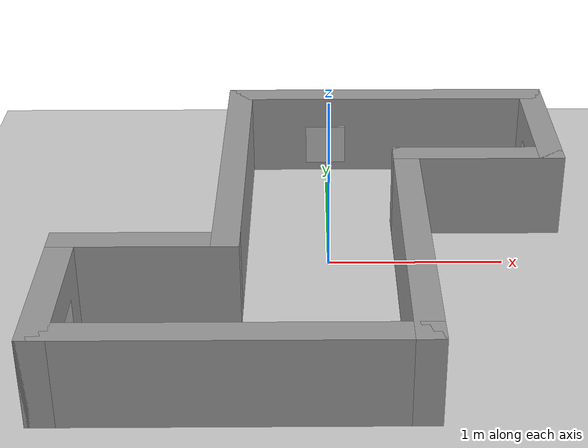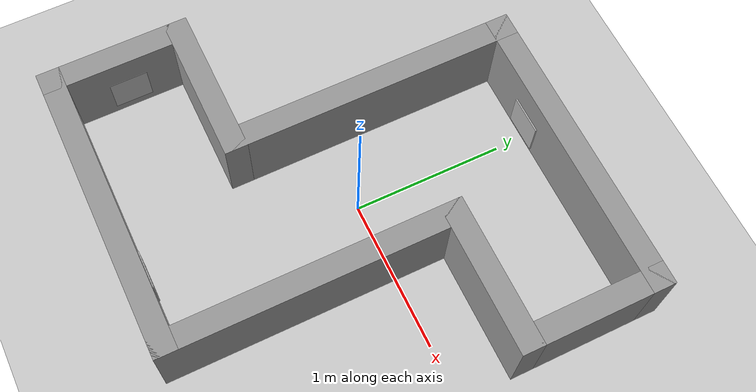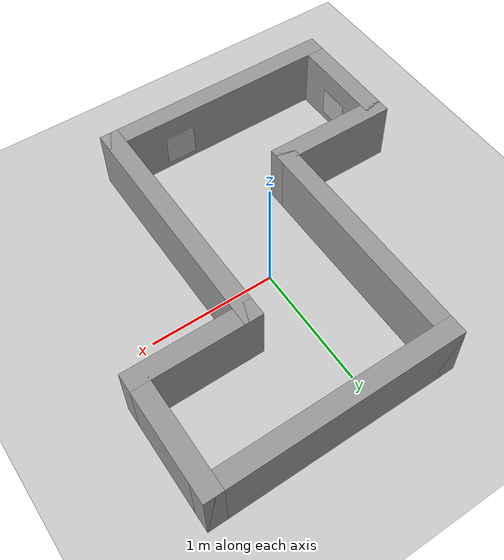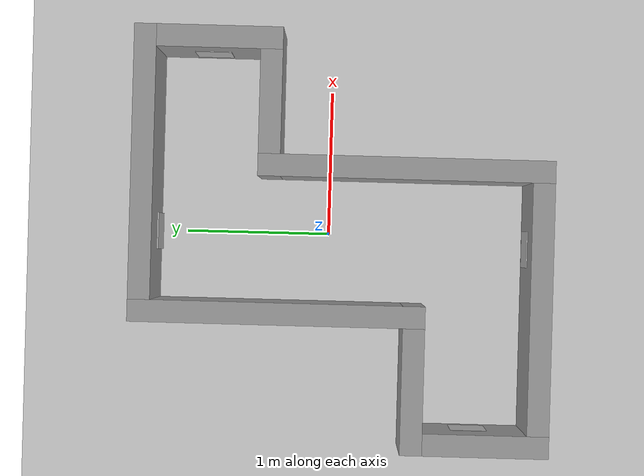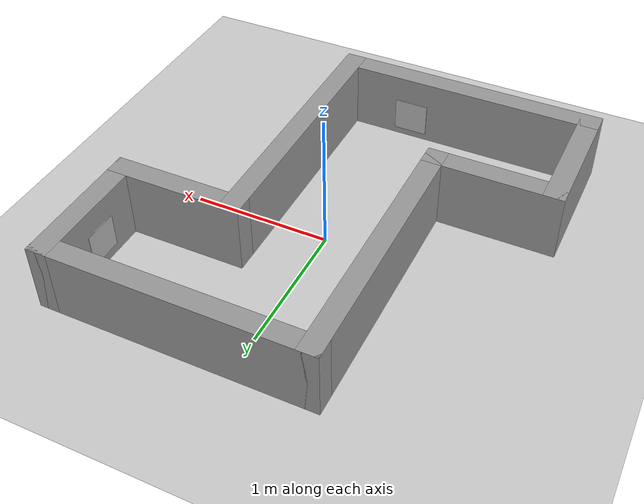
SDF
<sdf version="1.7">
 <world name="default">
  <model name="ground_plane">
   <static>1</static>
   <link name="link">
    <collision name="collision">
     <geometry><plane><normal>0 0 1</normal><size>100 100</size></plane></geometry>
     <surface><friction><ode><mu>100</mu><mu2>50</mu2></ode></friction></surface>
    </collision>
    <visual name="visual">
     <cast_shadows>0</cast_shadows>
     <geometry><plane><normal>0 0 1</normal><size>100 100</size></plane></geometry>
     <material>
      <script><uri>file://media/materials/scripts/gazebo.material</uri><name>Gazebo/Grey</name></script>
     </material>
    </visual>
   </link>
  </model>
  <light name="sun" type="directional">
   <pose>0 0 10 0 -0 0</pose>
   <diffuse>0.8 0.8 0.8 1</diffuse>
   <specular>0.2 0.2 0.2 1</specular>
   <attenuation>
    <range>1000</range>
    <constant>0.9</constant>
    <linear>0.01</linear>
    <quadratic>0.001</quadratic>
   </attenuation>
   <direction>-0.5 0.1 -0.9</direction>
   <spot><inner_angle>0</inner_angle><outer_angle>0</outer_angle><falloff>0</falloff></spot>
  </light>
  <scene><shadows>0</shadows><ambient>0.4 0.4 0.4 1</ambient><background>0.7 0.7 0.7 1</background></scene>
  <physics type="ode">
   <real_time_update_rate>1000</real_time_update_rate>
   <max_step_size>0.001</max_step_size>
   <real_time_factor>1</real_time_factor>
   <ode>
    <solver>
     <type>quick</type>
     <iters>150</iters>
     <precon_iters>0</precon_iters>
     <sor>1.4</sor>
     <use_dynamic_moi_rescaling>1</use_dynamic_moi_rescaling>
    </solver>
    <constraints>
     <cfm>1e-05</cfm>
     <erp>0.2</erp>
     <contact_max_correcting_vel>2000</contact_max_correcting_vel>
     <contact_surface_layer>0.01</contact_surface_layer>
    </constraints>
   </ode>
  </physics>
  <gravity>0 0 -9.8</gravity>
  <magnetic_field>6e-06 2.3e-05 -4.2e-05</magnetic_field>
  <atmosphere type="adiabatic"/>
  <spherical_coordinates>
   <surface_model>EARTH_WGS84</surface_model>
   <latitude_deg>0</latitude_deg>
   <longitude_deg>0</longitude_deg>
   <elevation>0</elevation>
   <heading_deg>0</heading_deg>
  </spherical_coordinates>
  <model name="test_world_1">
   <pose>-0.045124 0.676542 0 0 -0 0</pose>
   <link name="Wall_19">
    <collision name="Wall_19_Collision">
     <geometry><box><size>2 0.15 0.5</size></box></geometry>
     <pose>0 0 0.25 0 -0 0</pose>
    </collision>
    <visual name="Wall_19_Visual">
     <pose>0 0 0.25 0 -0 0</pose>
     <geometry><box><size>2 0.15 0.5</size></box></geometry>
     <material>
      <script><uri>file://media/materials/scripts/gazebo.material</uri><name>Gazebo/Grey</name></script>
      <ambient>1 1 1 1</ambient>
     </material>
     <meta><layer>0</layer></meta>
    </visual>
    <pose>0.499992 -1.19 0 0 -0 1.5708</pose>
   </link>
   <link name="Wall_23">
    <collision name="Wall_23_Collision">
     <geometry><box><size>2 0.15 0.5</size></box></geometry>
     <pose>0 0 0.25 0 -0 0</pose>
    </collision>
    <visual name="Wall_23_Visual">
     <pose>0 0 0.25 0 -0 0</pose>
     <geometry><box><size>2 0.15 0.5</size></box></geometry>
     <material>
      <script><uri>file://media/materials/scripts/gazebo.material</uri><name>Gazebo/Grey</name></script>
      <ambient>1 1 1 1</ambient>
     </material>
     <meta><layer>0</layer></meta>
    </visual>
    <pose>-0.500008 -0.34 0 0 -0 -1.5708</pose>
   </link>
   <link name="Wall_24">
    <collision name="Wall_24_Collision">
     <geometry><box><size>1 0.15 0.5</size></box></geometry>
     <pose>0 0 0.25 0 -0 0</pose>
    </collision>
    <visual name="Wall_24_Visual">
     <pose>0 0 0.25 0 -0 0</pose>
     <geometry><box><size>1 0.15 0.5</size></box></geometry>
     <material>
      <script><uri>file://media/materials/scripts/gazebo.material</uri><name>Gazebo/Grey</name></script>
      <ambient>1 1 1 1</ambient>
     </material>
     <meta><layer>0</layer></meta>
    </visual>
    <pose>-0.925008 -1.265 0 0 -0 3.14159</pose>
   </link>
   <link name="Wall_25">
    <collision name="Wall_25_Collision">
     <geometry><box><size>1 0.15 0.5</size></box></geometry>
     <pose>0 0 0.25 0 -0 0</pose>
    </collision>
    <visual name="Wall_25_Visual">
     <pose>0 0 0.25 0 -0 0</pose>
     <geometry><box><size>1 0.15 0.5</size></box></geometry>
     <material>
      <script><uri>file://media/materials/scripts/gazebo.material</uri><name>Gazebo/Grey</name></script>
      <ambient>1 1 1 1</ambient>
     </material>
     <meta><layer>0</layer></meta>
    </visual>
    <pose>-1.35001 -1.69 0 0 -0 -1.5708</pose>
   </link>
   <link name="Wall_28">
    <collision name="Wall_28_Collision">
     <geometry><box><size>2 0.15 0.5</size></box></geometry>
     <pose>0 0 0.25 0 -0 0</pose>
    </collision>
    <visual name="Wall_28_Visual">
     <pose>0 0 0.25 0 -0 0</pose>
     <geometry><box><size>2 0.15 0.5</size></box></geometry>
     <material>
      <script><uri>file://media/materials/scripts/gazebo.material</uri><name>Gazebo/Grey</name></script>
      <ambient>1 1 1 1</ambient>
     </material>
     <meta><layer>0</layer></meta>
    </visual>
    <pose>-0.425008 -2.115 0 0 -0 0</pose>
   </link>
   <link name="Wall_30">
    <collision name="Wall_30_Collision">
     <geometry><box><size>2 0.15 0.5</size></box></geometry>
     <pose>0 0 0.25 0 -0 0</pose>
    </collision>
    <visual name="Wall_30_Visual">
     <pose>0 0 0.25 0 -0 0</pose>
     <geometry><box><size>2 0.15 0.5</size></box></geometry>
     <material>
      <script><uri>file://media/materials/scripts/gazebo.material</uri><name>Gazebo/Grey</name></script>
      <ambient>1 1 1 1</ambient>
     </material>
     <meta><layer>0</layer></meta>
    </visual>
    <pose>0.424992 0.585 0 0 -0 0</pose>
   </link>
   <link name="Wall_31">
    <collision name="Wall_31_Collision">
     <geometry><box><size>1 0.15 0.5</size></box></geometry>
     <pose>0 0 0.25 0 -0 0</pose>
    </collision>
    <visual name="Wall_31_Visual">
     <pose>0 0 0.25 0 -0 0</pose>
     <geometry><box><size>1 0.15 0.5</size></box></geometry>
     <material>
      <script><uri>file://media/materials/scripts/gazebo.material</uri><name>Gazebo/Grey</name></script>
      <ambient>1 1 1 1</ambient>
     </material>
     <meta><layer>0</layer></meta>
    </visual>
    <pose>1.34999 0.16 0 0 -0 -1.5708</pose>
   </link>
   <link name="Wall_32">
    <collision name="Wall_32_Collision">
     <geometry><box><size>1.00003 0.15 0.5</size></box></geometry>
     <pose>0 0 0.25 0 -0 0</pose>
    </collision>
    <visual name="Wall_32_Visual">
     <pose>0 0 0.25 0 -0 0</pose>
     <geometry><box><size>1.00003 0.15 0.5</size></box></geometry>
     <material>
      <script><uri>file://media/materials/scripts/gazebo.material</uri><name>Gazebo/Grey</name></script>
      <ambient>1 1 1 1</ambient>
     </material>
     <meta><layer>0</layer></meta>
    </visual>
    <pose>0.924992 -0.265 0 0 -0 3.14159</pose>
   </link>
   <static>1</static>
  </model>
  <model name="qr_code_1">
   <static>1</static>
   <link name="link">
    <visual name="visual">
     <cast_shadows>0</cast_shadows>
     <geometry><box><size>0.01 0.25 0.25</size></box></geometry>
     <material>
      <script>
       <uri>model://qr_code_1/materials/scripts</uri>
       <uri>model://qr_code_1/materials/textures</uri>
       <name>QRCode1/Image</name>
      </script>
     </material>
    </visual>
   </link>
   <pose>-0.069727 -1.3612 0.17892 0 -0 1.5708</pose>
  </model>
  <model name="qr_code_2">
   <static>1</static>
   <link name="link">
    <visual name="visual">
     <cast_shadows>0</cast_shadows>
     <geometry><box><size>0.01 0.25 0.25</size></box></geometry>
     <material>
      <script>
       <uri>model://qr_code_2/materials/scripts</uri>
       <uri>model://qr_code_2/materials/textures</uri>
       <name>QRCode2/Image</name>
      </script>
     </material>
    </visual>
   </link>
   <pose>-1.32329 -0.994271 0.183697 0 -0 0</pose>
  </model>
  <model name="qr_code_3">
   <static>1</static>
   <link name="link">
    <visual name="visual">
     <cast_shadows>0</cast_shadows>
     <geometry><box><size>0.01 0.25 0.25</size></box></geometry>
     <material>
      <script>
       <uri>model://qr_code_3/materials/scripts</uri>
       <uri>model://qr_code_3/materials/textures</uri>
       <name>QRCode3/Image</name>
      </script>
     </material>
    </visual>
   </link>
   <pose>-0.006644 1.17003 0.189432 0 0 -1.5708</pose>
  </model>
  <model name="qr_code_4">
   <static>1</static>
   <link name="link">
    <visual name="visual">
     <cast_shadows>0</cast_shadows>
     <geometry><box><size>0.01 0.25 0.25</size></box></geometry>
     <material>
      <script>
       <uri>model://qr_code_4/materials/scripts</uri>
       <uri>model://qr_code_4/materials/textures</uri>
       <name>QRCode4/Image</name>
      </script>
     </material>
    </visual>
   </link>
   <pose>1.23072 0.823369 0.194086 0 -0 0</pose>
  </model>
 </world>
</sdf>
